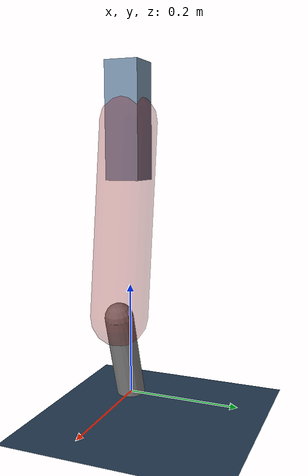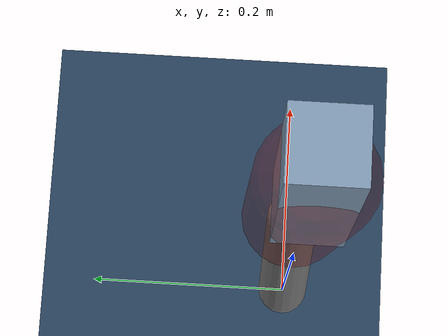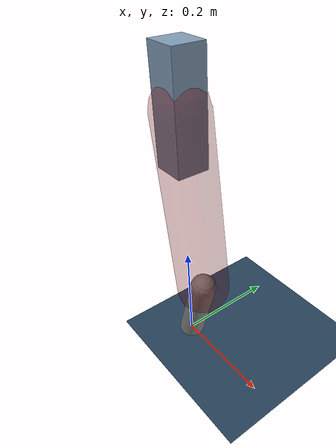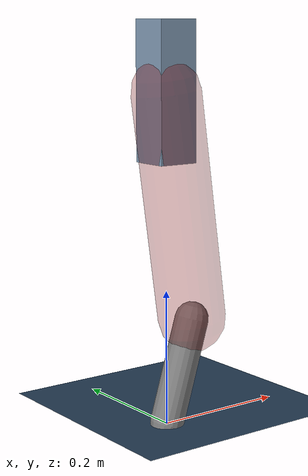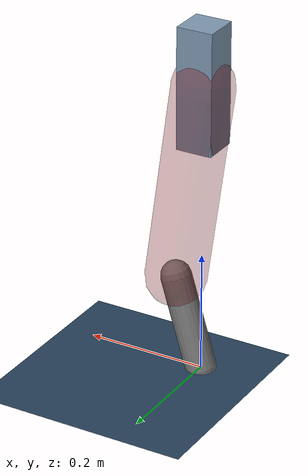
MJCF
<mujoco model="Hopper2D">
	<compiler inertiafromgeom="true" angle="radian" />
	<option timestep="0.001" integrator="implicit" cone="elliptic" solver="Newton" tolerance="1e-10" />

	<default>
		<geom contype="1" conaffinity="1" condim="3" friction="2 0.005 0.0001" solref="0.005 1" />
		<joint limited="true" damping="0.1" />
	</default>

	<asset>
		<texture name="skybox" type="skybox" builtin="gradient" rgb1=".4 .6 .8" rgb2="0 0 0" width="800" height="800" />
		<texture name="grid" type="2d" builtin="checker" rgb1=".1 .2 .3" rgb2=".2 .3 .4" width="300" height="300" mark="edge" markrgb=".2 .3 .4" />
		<material name="ground" texture="grid" texrepeat="1 1" texuniform="true" reflectance="0.1" />
		<material name="leg" rgba="0.5 0.6 0.7 1" />
	</asset>

	<worldbody>

		<geom name="floor" type="plane" size="5 5 0.25" material="ground" />

		<light directional="false" diffuse="0.8 0.8 0.8" specular="0.3 0.3 0.3" pos="0 0 2" dir="0 0 -1" />
		<light mode="targetbodycom" target="base" directional="false" diffuse="0.8 0.8 0.8" specular="0.3 0.3 0.3" pos="0 0 2" dir="0 0 -1" />

		<camera name="fixed" pos="0 -2 1" xyaxes="1 0 0 0 0 1" />
		<camera name="tracking" mode="trackcom" pos="0 -3 1" />

		<body name="root" pos="0 0 0.48674329827411766">
			<joint name="slide_x" type="slide" axis="1 0 0" range="-100 100" />
			<joint name="slide_z" type="slide" axis="0 0 1" range="0 10" />

			<body name="base" pos="0 0 0">
				<geom name="torso" type="box" size="0.03 0.03 0.1" mass="1.6989999999999998" material="leg" />

				<body name="link1" pos="0 0 0" euler="0 1.4335063710673341 0">
					<joint type="hinge" axis="0 -1 0" pos="0 0 0" name="hinge1" limited="true" range="-3.14 3.14" stiffness="0" damping="0.1" />
					<geom name="thigh" type="capsule" fromto="0 0 0 0.33727254938982454 0 0" size="0.05" rgba="0.5 0 0 0.3" mass="1.0910631382915086" />

					<body name="link2" pos="0.33727254938982454 0 0" euler="0 0.4309421554233017 0">
						<joint type="hinge" axis="0 -1 0" pos="0 0 0" name="hinge2" limited="true" range="-3.14 3.14" stiffness="0" damping="0.1" />
						<geom name="shank" type="capsule" fromto="0 0 0 0.15947074888429316 0 0" size="0.025" mass="0.3661236739958639" />

					</body>
				</body>
			</body>
		</body>
	</worldbody>

	<actuator>
		<motor name="torque1" joint="hinge1" ctrlrange="-48.14653120992258 48.14653120992258" ctrllimited="true" gear="1" />
		<motor name="torque2" joint="hinge2" ctrlrange="-26.90268768210036 26.90268768210036" ctrllimited="true" gear="1" />
	</actuator>
</mujoco>
